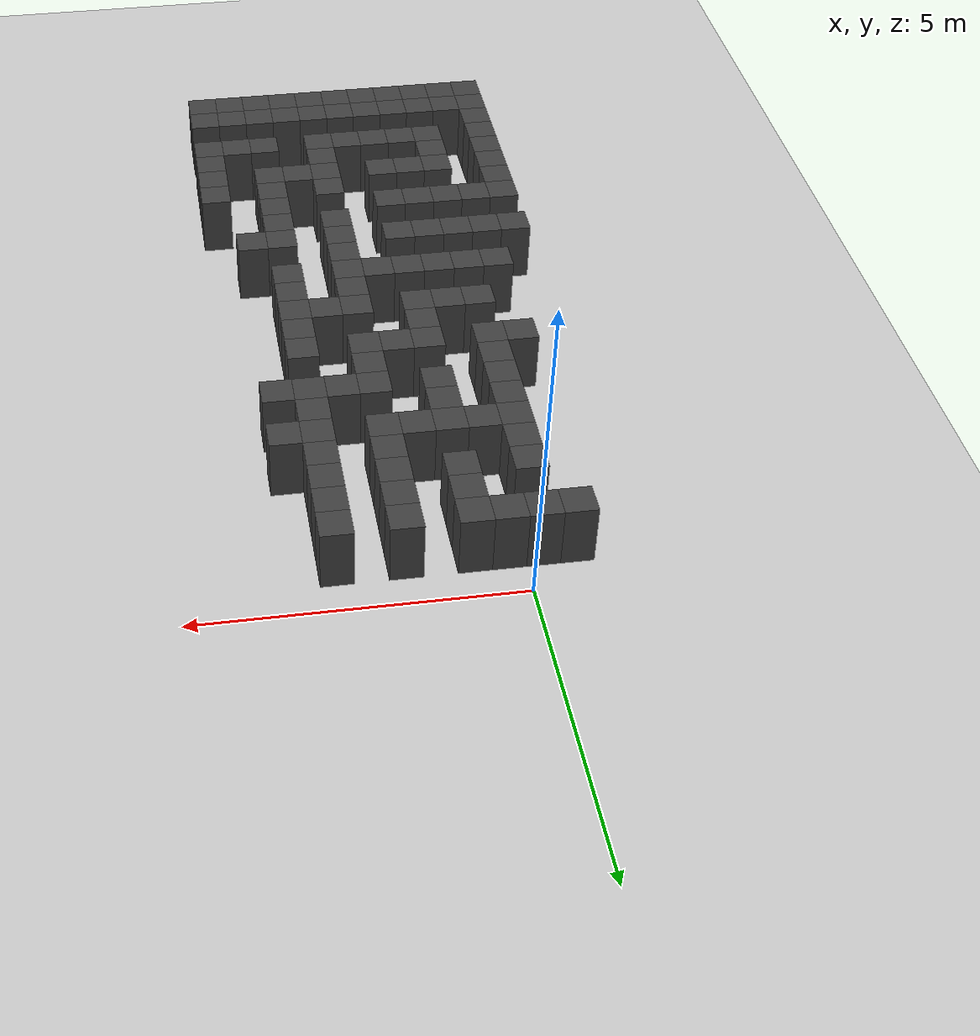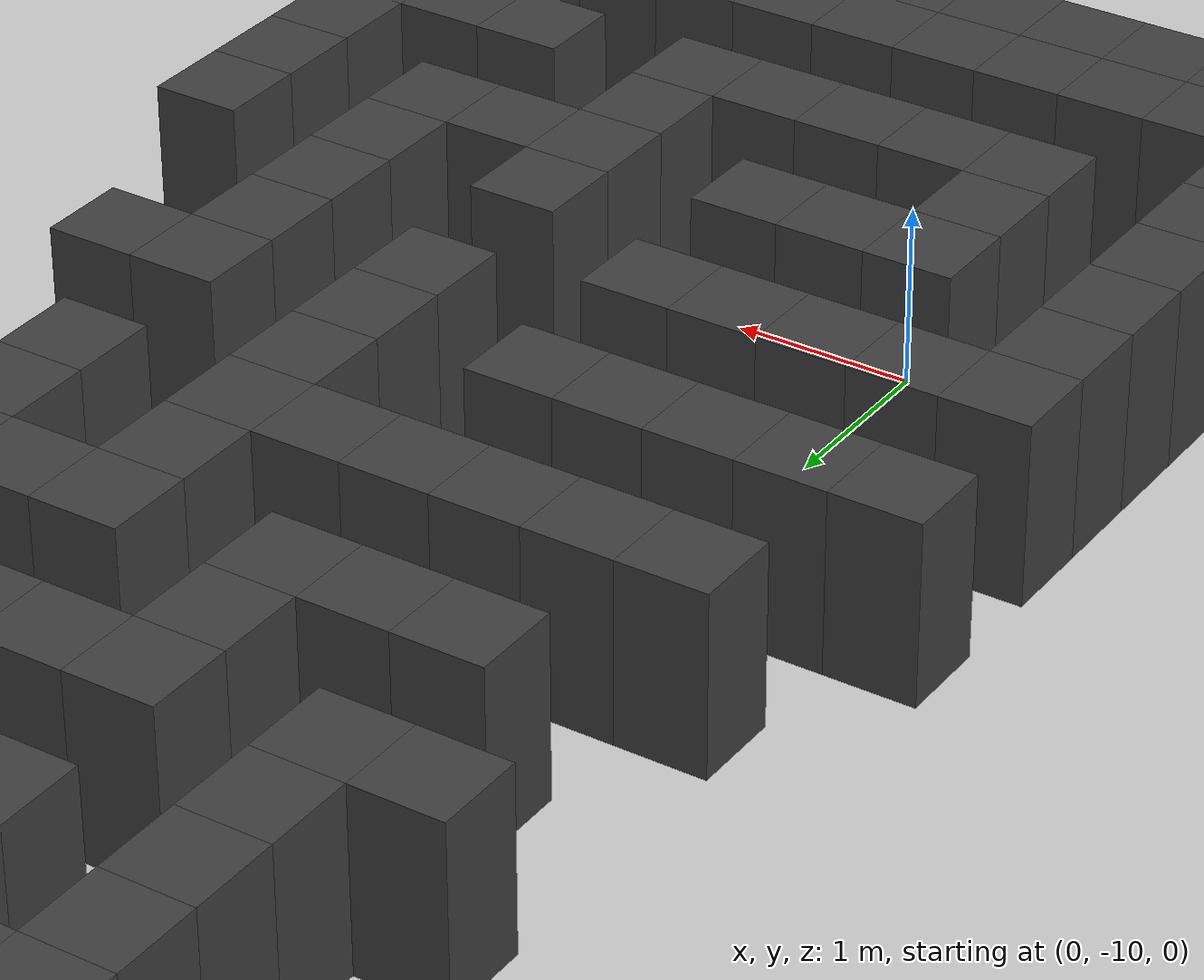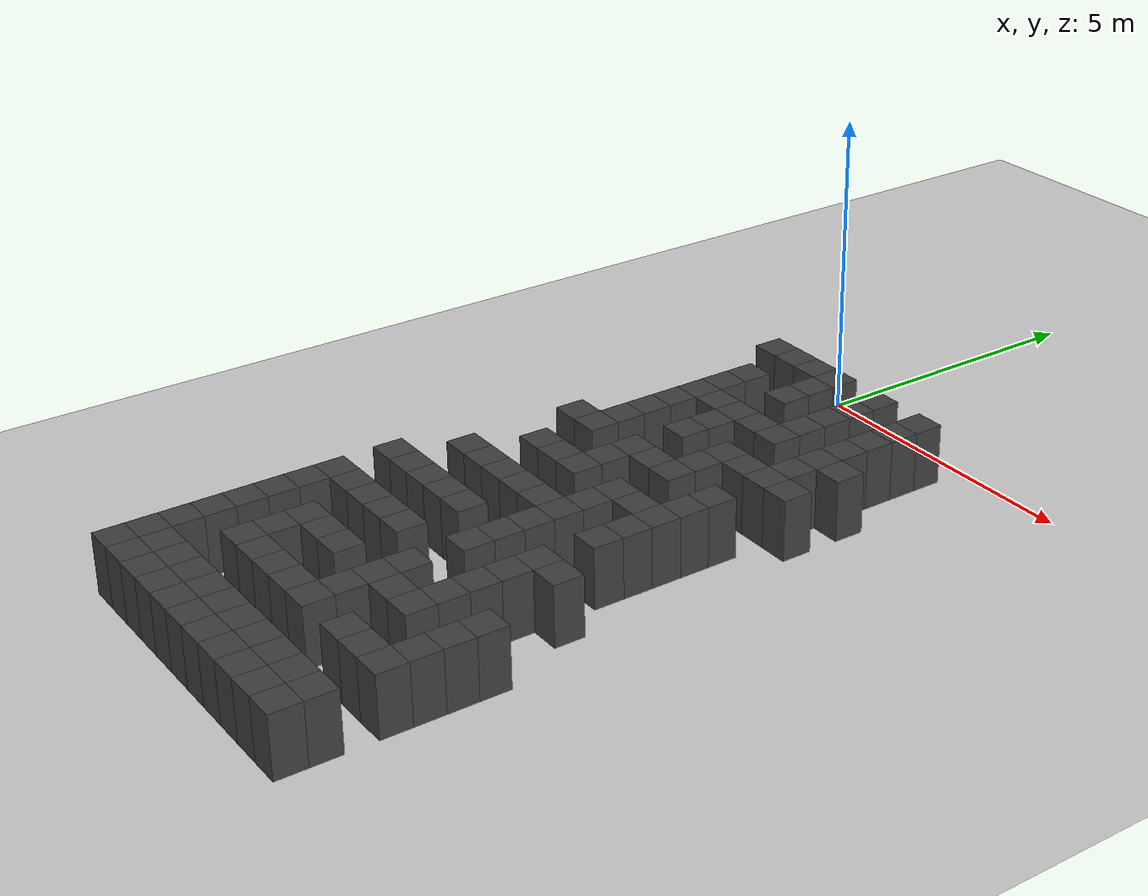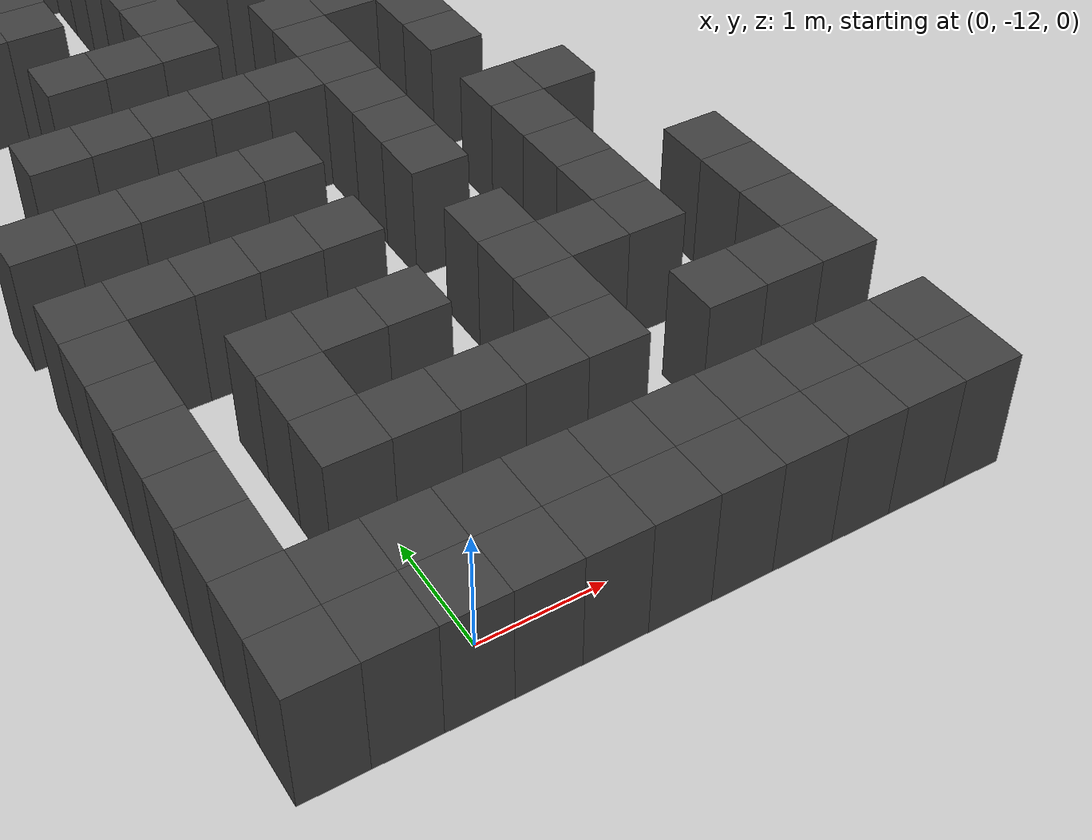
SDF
<sdf version="1.7">
 <world name="map_19815">
  <model name="ground_plane">
   <static>true</static>
   <link name="link">
    <collision name="collision">
     <geometry><plane><normal>0 0 1</normal><size>200 200</size></plane></geometry>
    </collision>
    <visual name="visual">
     <geometry><plane><normal>0 0 1</normal><size>200 200</size></plane></geometry>
     <material><ambient>0.8 0.8 0.8 1</ambient><diffuse>0.8 0.8 0.8 1</diffuse></material>
    </visual>
   </link>
  </model>
  <model name="maze_environment">
   <static>true</static>
   <link name="wall_693">
    <pose>-0.750 -0.750 0.500 0 0 0</pose>
    <collision name="col"><geometry><box><size>0.5 0.5 1.0</size></box></geometry></collision>
    <visual name="vis">
     <geometry><box><size>0.5 0.5 1.0</size></box></geometry>
     <material><ambient>0.15 0.15 0.15 1</ambient><diffuse>0.25 0.25 0.25 1</diffuse></material>
    </visual>
   </link>
   <link name="wall_694">
    <pose>-0.250 -0.750 0.500 0 0 0</pose>
    <collision name="col"><geometry><box><size>0.5 0.5 1.0</size></box></geometry></collision>
    <visual name="vis">
     <geometry><box><size>0.5 0.5 1.0</size></box></geometry>
     <material><ambient>0.15 0.15 0.15 1</ambient><diffuse>0.25 0.25 0.25 1</diffuse></material>
    </visual>
   </link>
   <link name="wall_695">
    <pose>0.250 -0.750 0.500 0 0 0</pose>
    <collision name="col"><geometry><box><size>0.5 0.5 1.0</size></box></geometry></collision>
    <visual name="vis">
     <geometry><box><size>0.5 0.5 1.0</size></box></geometry>
     <material><ambient>0.15 0.15 0.15 1</ambient><diffuse>0.25 0.25 0.25 1</diffuse></material>
    </visual>
   </link>
   <link name="wall_696">
    <pose>0.750 -0.750 0.500 0 0 0</pose>
    <collision name="col"><geometry><box><size>0.5 0.5 1.0</size></box></geometry></collision>
    <visual name="vis">
     <geometry><box><size>0.5 0.5 1.0</size></box></geometry>
     <material><ambient>0.15 0.15 0.15 1</ambient><diffuse>0.25 0.25 0.25 1</diffuse></material>
    </visual>
   </link>
   <link name="wall_697">
    <pose>1.750 -0.750 0.500 0 0 0</pose>
    <collision name="col"><geometry><box><size>0.5 0.5 1.0</size></box></geometry></collision>
    <visual name="vis">
     <geometry><box><size>0.5 0.5 1.0</size></box></geometry>
     <material><ambient>0.15 0.15 0.15 1</ambient><diffuse>0.25 0.25 0.25 1</diffuse></material>
    </visual>
   </link>
   <link name="wall_698">
    <pose>2.750 -0.750 0.500 0 0 0</pose>
    <collision name="col"><geometry><box><size>0.5 0.5 1.0</size></box></geometry></collision>
    <visual name="vis">
     <geometry><box><size>0.5 0.5 1.0</size></box></geometry>
     <material><ambient>0.15 0.15 0.15 1</ambient><diffuse>0.25 0.25 0.25 1</diffuse></material>
    </visual>
   </link>
   <link name="wall_720">
    <pose>0.750 -1.250 0.500 0 0 0</pose>
    <collision name="col"><geometry><box><size>0.5 0.5 1.0</size></box></geometry></collision>
    <visual name="vis">
     <geometry><box><size>0.5 0.5 1.0</size></box></geometry>
     <material><ambient>0.15 0.15 0.15 1</ambient><diffuse>0.25 0.25 0.25 1</diffuse></material>
    </visual>
   </link>
   <link name="wall_721">
    <pose>1.750 -1.250 0.500 0 0 0</pose>
    <collision name="col"><geometry><box><size>0.5 0.5 1.0</size></box></geometry></collision>
    <visual name="vis">
     <geometry><box><size>0.5 0.5 1.0</size></box></geometry>
     <material><ambient>0.15 0.15 0.15 1</ambient><diffuse>0.25 0.25 0.25 1</diffuse></material>
    </visual>
   </link>
   <link name="wall_722">
    <pose>2.750 -1.250 0.500 0 0 0</pose>
    <collision name="col"><geometry><box><size>0.5 0.5 1.0</size></box></geometry></collision>
    <visual name="vis">
     <geometry><box><size>0.5 0.5 1.0</size></box></geometry>
     <material><ambient>0.15 0.15 0.15 1</ambient><diffuse>0.25 0.25 0.25 1</diffuse></material>
    </visual>
   </link>
   <link name="wall_749">
    <pose>-0.250 -1.750 0.500 0 0 0</pose>
    <collision name="col"><geometry><box><size>0.5 0.5 1.0</size></box></geometry></collision>
    <visual name="vis">
     <geometry><box><size>0.5 0.5 1.0</size></box></geometry>
     <material><ambient>0.15 0.15 0.15 1</ambient><diffuse>0.25 0.25 0.25 1</diffuse></material>
    </visual>
   </link>
   <link name="wall_750">
    <pose>0.750 -1.750 0.500 0 0 0</pose>
    <collision name="col"><geometry><box><size>0.5 0.5 1.0</size></box></geometry></collision>
    <visual name="vis">
     <geometry><box><size>0.5 0.5 1.0</size></box></geometry>
     <material><ambient>0.15 0.15 0.15 1</ambient><diffuse>0.25 0.25 0.25 1</diffuse></material>
    </visual>
   </link>
   <link name="wall_751">
    <pose>1.750 -1.750 0.500 0 0 0</pose>
    <collision name="col"><geometry><box><size>0.5 0.5 1.0</size></box></geometry></collision>
    <visual name="vis">
     <geometry><box><size>0.5 0.5 1.0</size></box></geometry>
     <material><ambient>0.15 0.15 0.15 1</ambient><diffuse>0.25 0.25 0.25 1</diffuse></material>
    </visual>
   </link>
   <link name="wall_752">
    <pose>2.750 -1.750 0.500 0 0 0</pose>
    <collision name="col"><geometry><box><size>0.5 0.5 1.0</size></box></geometry></collision>
    <visual name="vis">
     <geometry><box><size>0.5 0.5 1.0</size></box></geometry>
     <material><ambient>0.15 0.15 0.15 1</ambient><diffuse>0.25 0.25 0.25 1</diffuse></material>
    </visual>
   </link>
   <link name="wall_773">
    <pose>-0.250 -2.250 0.500 0 0 0</pose>
    <collision name="col"><geometry><box><size>0.5 0.5 1.0</size></box></geometry></collision>
    <visual name="vis">
     <geometry><box><size>0.5 0.5 1.0</size></box></geometry>
     <material><ambient>0.15 0.15 0.15 1</ambient><diffuse>0.25 0.25 0.25 1</diffuse></material>
    </visual>
   </link>
   <link name="wall_774">
    <pose>1.750 -2.250 0.500 0 0 0</pose>
    <collision name="col"><geometry><box><size>0.5 0.5 1.0</size></box></geometry></collision>
    <visual name="vis">
     <geometry><box><size>0.5 0.5 1.0</size></box></geometry>
     <material><ambient>0.15 0.15 0.15 1</ambient><diffuse>0.25 0.25 0.25 1</diffuse></material>
    </visual>
   </link>
   <link name="wall_775">
    <pose>2.750 -2.250 0.500 0 0 0</pose>
    <collision name="col"><geometry><box><size>0.5 0.5 1.0</size></box></geometry></collision>
    <visual name="vis">
     <geometry><box><size>0.5 0.5 1.0</size></box></geometry>
     <material><ambient>0.15 0.15 0.15 1</ambient><diffuse>0.25 0.25 0.25 1</diffuse></material>
    </visual>
   </link>
   <link name="wall_796">
    <pose>-0.250 -2.750 0.500 0 0 0</pose>
    <collision name="col"><geometry><box><size>0.5 0.5 1.0</size></box></geometry></collision>
    <visual name="vis">
     <geometry><box><size>0.5 0.5 1.0</size></box></geometry>
     <material><ambient>0.15 0.15 0.15 1</ambient><diffuse>0.25 0.25 0.25 1</diffuse></material>
    </visual>
   </link>
   <link name="wall_797">
    <pose>0.250 -2.750 0.500 0 0 0</pose>
    <collision name="col"><geometry><box><size>0.5 0.5 1.0</size></box></geometry></collision>
    <visual name="vis">
     <geometry><box><size>0.5 0.5 1.0</size></box></geometry>
     <material><ambient>0.15 0.15 0.15 1</ambient><diffuse>0.25 0.25 0.25 1</diffuse></material>
    </visual>
   </link>
   <link name="wall_798">
    <pose>0.750 -2.750 0.500 0 0 0</pose>
    <collision name="col"><geometry><box><size>0.5 0.5 1.0</size></box></geometry></collision>
    <visual name="vis">
     <geometry><box><size>0.5 0.5 1.0</size></box></geometry>
     <material><ambient>0.15 0.15 0.15 1</ambient><diffuse>0.25 0.25 0.25 1</diffuse></material>
    </visual>
   </link>
   <link name="wall_799">
    <pose>1.250 -2.750 0.500 0 0 0</pose>
    <collision name="col"><geometry><box><size>0.5 0.5 1.0</size></box></geometry></collision>
    <visual name="vis">
     <geometry><box><size>0.5 0.5 1.0</size></box></geometry>
     <material><ambient>0.15 0.15 0.15 1</ambient><diffuse>0.25 0.25 0.25 1</diffuse></material>
    </visual>
   </link>
   <link name="wall_800">
    <pose>1.750 -2.750 0.500 0 0 0</pose>
    <collision name="col"><geometry><box><size>0.5 0.5 1.0</size></box></geometry></collision>
    <visual name="vis">
     <geometry><box><size>0.5 0.5 1.0</size></box></geometry>
     <material><ambient>0.15 0.15 0.15 1</ambient><diffuse>0.25 0.25 0.25 1</diffuse></material>
    </visual>
   </link>
   <link name="wall_801">
    <pose>2.750 -2.750 0.500 0 0 0</pose>
    <collision name="col"><geometry><box><size>0.5 0.5 1.0</size></box></geometry></collision>
    <visual name="vis">
     <geometry><box><size>0.5 0.5 1.0</size></box></geometry>
     <material><ambient>0.15 0.15 0.15 1</ambient><diffuse>0.25 0.25 0.25 1</diffuse></material>
    </visual>
   </link>
   <link name="wall_802">
    <pose>3.250 -2.750 0.500 0 0 0</pose>
    <collision name="col"><geometry><box><size>0.5 0.5 1.0</size></box></geometry></collision>
    <visual name="vis">
     <geometry><box><size>0.5 0.5 1.0</size></box></geometry>
     <material><ambient>0.15 0.15 0.15 1</ambient><diffuse>0.25 0.25 0.25 1</diffuse></material>
    </visual>
   </link>
   <link name="wall_827">
    <pose>-0.250 -3.250 0.500 0 0 0</pose>
    <collision name="col"><geometry><box><size>0.5 0.5 1.0</size></box></geometry></collision>
    <visual name="vis">
     <geometry><box><size>0.5 0.5 1.0</size></box></geometry>
     <material><ambient>0.15 0.15 0.15 1</ambient><diffuse>0.25 0.25 0.25 1</diffuse></material>
    </visual>
   </link>
   <link name="wall_828">
    <pose>0.750 -3.250 0.500 0 0 0</pose>
    <collision name="col"><geometry><box><size>0.5 0.5 1.0</size></box></geometry></collision>
    <visual name="vis">
     <geometry><box><size>0.5 0.5 1.0</size></box></geometry>
     <material><ambient>0.15 0.15 0.15 1</ambient><diffuse>0.25 0.25 0.25 1</diffuse></material>
    </visual>
   </link>
   <link name="wall_829">
    <pose>2.750 -3.250 0.500 0 0 0</pose>
    <collision name="col"><geometry><box><size>0.5 0.5 1.0</size></box></geometry></collision>
    <visual name="vis">
     <geometry><box><size>0.5 0.5 1.0</size></box></geometry>
     <material><ambient>0.15 0.15 0.15 1</ambient><diffuse>0.25 0.25 0.25 1</diffuse></material>
    </visual>
   </link>
   <link name="wall_852">
    <pose>-0.250 -3.750 0.500 0 0 0</pose>
    <collision name="col"><geometry><box><size>0.5 0.5 1.0</size></box></geometry></collision>
    <visual name="vis">
     <geometry><box><size>0.5 0.5 1.0</size></box></geometry>
     <material><ambient>0.15 0.15 0.15 1</ambient><diffuse>0.25 0.25 0.25 1</diffuse></material>
    </visual>
   </link>
   <link name="wall_853">
    <pose>0.750 -3.750 0.500 0 0 0</pose>
    <collision name="col"><geometry><box><size>0.5 0.5 1.0</size></box></geometry></collision>
    <visual name="vis">
     <geometry><box><size>0.5 0.5 1.0</size></box></geometry>
     <material><ambient>0.15 0.15 0.15 1</ambient><diffuse>0.25 0.25 0.25 1</diffuse></material>
    </visual>
   </link>
   <link name="wall_854">
    <pose>1.750 -3.750 0.500 0 0 0</pose>
    <collision name="col"><geometry><box><size>0.5 0.5 1.0</size></box></geometry></collision>
    <visual name="vis">
     <geometry><box><size>0.5 0.5 1.0</size></box></geometry>
     <material><ambient>0.15 0.15 0.15 1</ambient><diffuse>0.25 0.25 0.25 1</diffuse></material>
    </visual>
   </link>
   <link name="wall_855">
    <pose>2.250 -3.750 0.500 0 0 0</pose>
    <collision name="col"><geometry><box><size>0.5 0.5 1.0</size></box></geometry></collision>
    <visual name="vis">
     <geometry><box><size>0.5 0.5 1.0</size></box></geometry>
     <material><ambient>0.15 0.15 0.15 1</ambient><diffuse>0.25 0.25 0.25 1</diffuse></material>
    </visual>
   </link>
   <link name="wall_856">
    <pose>2.750 -3.750 0.500 0 0 0</pose>
    <collision name="col"><geometry><box><size>0.5 0.5 1.0</size></box></geometry></collision>
    <visual name="vis">
     <geometry><box><size>0.5 0.5 1.0</size></box></geometry>
     <material><ambient>0.15 0.15 0.15 1</ambient><diffuse>0.25 0.25 0.25 1</diffuse></material>
    </visual>
   </link>
   <link name="wall_857">
    <pose>3.250 -3.750 0.500 0 0 0</pose>
    <collision name="col"><geometry><box><size>0.5 0.5 1.0</size></box></geometry></collision>
    <visual name="vis">
     <geometry><box><size>0.5 0.5 1.0</size></box></geometry>
     <material><ambient>0.15 0.15 0.15 1</ambient><diffuse>0.25 0.25 0.25 1</diffuse></material>
    </visual>
   </link>
   <link name="wall_878">
    <pose>-0.250 -4.250 0.500 0 0 0</pose>
    <collision name="col"><geometry><box><size>0.5 0.5 1.0</size></box></geometry></collision>
    <visual name="vis">
     <geometry><box><size>0.5 0.5 1.0</size></box></geometry>
     <material><ambient>0.15 0.15 0.15 1</ambient><diffuse>0.25 0.25 0.25 1</diffuse></material>
    </visual>
   </link>
   <link name="wall_879">
    <pose>1.750 -4.250 0.500 0 0 0</pose>
    <collision name="col"><geometry><box><size>0.5 0.5 1.0</size></box></geometry></collision>
    <visual name="vis">
     <geometry><box><size>0.5 0.5 1.0</size></box></geometry>
     <material><ambient>0.15 0.15 0.15 1</ambient><diffuse>0.25 0.25 0.25 1</diffuse></material>
    </visual>
   </link>
   <link name="wall_903">
    <pose>-0.750 -4.750 0.500 0 0 0</pose>
    <collision name="col"><geometry><box><size>0.5 0.5 1.0</size></box></geometry></collision>
    <visual name="vis">
     <geometry><box><size>0.5 0.5 1.0</size></box></geometry>
     <material><ambient>0.15 0.15 0.15 1</ambient><diffuse>0.25 0.25 0.25 1</diffuse></material>
    </visual>
   </link>
   <link name="wall_904">
    <pose>-0.250 -4.750 0.500 0 0 0</pose>
    <collision name="col"><geometry><box><size>0.5 0.5 1.0</size></box></geometry></collision>
    <visual name="vis">
     <geometry><box><size>0.5 0.5 1.0</size></box></geometry>
     <material><ambient>0.15 0.15 0.15 1</ambient><diffuse>0.25 0.25 0.25 1</diffuse></material>
    </visual>
   </link>
   <link name="wall_905">
    <pose>0.750 -4.750 0.500 0 0 0</pose>
    <collision name="col"><geometry><box><size>0.5 0.5 1.0</size></box></geometry></collision>
    <visual name="vis">
     <geometry><box><size>0.5 0.5 1.0</size></box></geometry>
     <material><ambient>0.15 0.15 0.15 1</ambient><diffuse>0.25 0.25 0.25 1</diffuse></material>
    </visual>
   </link>
   <link name="wall_906">
    <pose>1.250 -4.750 0.500 0 0 0</pose>
    <collision name="col"><geometry><box><size>0.5 0.5 1.0</size></box></geometry></collision>
    <visual name="vis">
     <geometry><box><size>0.5 0.5 1.0</size></box></geometry>
     <material><ambient>0.15 0.15 0.15 1</ambient><diffuse>0.25 0.25 0.25 1</diffuse></material>
    </visual>
   </link>
   <link name="wall_907">
    <pose>1.750 -4.750 0.500 0 0 0</pose>
    <collision name="col"><geometry><box><size>0.5 0.5 1.0</size></box></geometry></collision>
    <visual name="vis">
     <geometry><box><size>0.5 0.5 1.0</size></box></geometry>
     <material><ambient>0.15 0.15 0.15 1</ambient><diffuse>0.25 0.25 0.25 1</diffuse></material>
    </visual>
   </link>
   <link name="wall_908">
    <pose>2.750 -4.750 0.500 0 0 0</pose>
    <collision name="col"><geometry><box><size>0.5 0.5 1.0</size></box></geometry></collision>
    <visual name="vis">
     <geometry><box><size>0.5 0.5 1.0</size></box></geometry>
     <material><ambient>0.15 0.15 0.15 1</ambient><diffuse>0.25 0.25 0.25 1</diffuse></material>
    </visual>
   </link>
   <link name="wall_929">
    <pose>0.750 -5.250 0.500 0 0 0</pose>
    <collision name="col"><geometry><box><size>0.5 0.5 1.0</size></box></geometry></collision>
    <visual name="vis">
     <geometry><box><size>0.5 0.5 1.0</size></box></geometry>
     <material><ambient>0.15 0.15 0.15 1</ambient><diffuse>0.25 0.25 0.25 1</diffuse></material>
    </visual>
   </link>
   <link name="wall_930">
    <pose>2.750 -5.250 0.500 0 0 0</pose>
    <collision name="col"><geometry><box><size>0.5 0.5 1.0</size></box></geometry></collision>
    <visual name="vis">
     <geometry><box><size>0.5 0.5 1.0</size></box></geometry>
     <material><ambient>0.15 0.15 0.15 1</ambient><diffuse>0.25 0.25 0.25 1</diffuse></material>
    </visual>
   </link>
   <link name="wall_954">
    <pose>-0.250 -5.750 0.500 0 0 0</pose>
    <collision name="col"><geometry><box><size>0.5 0.5 1.0</size></box></geometry></collision>
    <visual name="vis">
     <geometry><box><size>0.5 0.5 1.0</size></box></geometry>
     <material><ambient>0.15 0.15 0.15 1</ambient><diffuse>0.25 0.25 0.25 1</diffuse></material>
    </visual>
   </link>
   <link name="wall_955">
    <pose>0.250 -5.750 0.500 0 0 0</pose>
    <collision name="col"><geometry><box><size>0.5 0.5 1.0</size></box></geometry></collision>
    <visual name="vis">
     <geometry><box><size>0.5 0.5 1.0</size></box></geometry>
     <material><ambient>0.15 0.15 0.15 1</ambient><diffuse>0.25 0.25 0.25 1</diffuse></material>
    </visual>
   </link>
   <link name="wall_956">
    <pose>0.750 -5.750 0.500 0 0 0</pose>
    <collision name="col"><geometry><box><size>0.5 0.5 1.0</size></box></geometry></collision>
    <visual name="vis">
     <geometry><box><size>0.5 0.5 1.0</size></box></geometry>
     <material><ambient>0.15 0.15 0.15 1</ambient><diffuse>0.25 0.25 0.25 1</diffuse></material>
    </visual>
   </link>
   <link name="wall_957">
    <pose>1.750 -5.750 0.500 0 0 0</pose>
    <collision name="col"><geometry><box><size>0.5 0.5 1.0</size></box></geometry></collision>
    <visual name="vis">
     <geometry><box><size>0.5 0.5 1.0</size></box></geometry>
     <material><ambient>0.15 0.15 0.15 1</ambient><diffuse>0.25 0.25 0.25 1</diffuse></material>
    </visual>
   </link>
   <link name="wall_958">
    <pose>2.250 -5.750 0.500 0 0 0</pose>
    <collision name="col"><geometry><box><size>0.5 0.5 1.0</size></box></geometry></collision>
    <visual name="vis">
     <geometry><box><size>0.5 0.5 1.0</size></box></geometry>
     <material><ambient>0.15 0.15 0.15 1</ambient><diffuse>0.25 0.25 0.25 1</diffuse></material>
    </visual>
   </link>
   <link name="wall_959">
    <pose>2.750 -5.750 0.500 0 0 0</pose>
    <collision name="col"><geometry><box><size>0.5 0.5 1.0</size></box></geometry></collision>
    <visual name="vis">
     <geometry><box><size>0.5 0.5 1.0</size></box></geometry>
     <material><ambient>0.15 0.15 0.15 1</ambient><diffuse>0.25 0.25 0.25 1</diffuse></material>
    </visual>
   </link>
   <link name="wall_980">
    <pose>1.750 -6.250 0.500 0 0 0</pose>
    <collision name="col"><geometry><box><size>0.5 0.5 1.0</size></box></geometry></collision>
    <visual name="vis">
     <geometry><box><size>0.5 0.5 1.0</size></box></geometry>
     <material><ambient>0.15 0.15 0.15 1</ambient><diffuse>0.25 0.25 0.25 1</diffuse></material>
    </visual>
   </link>
   <link name="wall_981">
    <pose>2.750 -6.250 0.500 0 0 0</pose>
    <collision name="col"><geometry><box><size>0.5 0.5 1.0</size></box></geometry></collision>
    <visual name="vis">
     <geometry><box><size>0.5 0.5 1.0</size></box></geometry>
     <material><ambient>0.15 0.15 0.15 1</ambient><diffuse>0.25 0.25 0.25 1</diffuse></material>
    </visual>
   </link>
   <link name="wall_1006">
    <pose>-0.750 -6.750 0.500 0 0 0</pose>
    <collision name="col"><geometry><box><size>0.5 0.5 1.0</size></box></geometry></collision>
    <visual name="vis">
     <geometry><box><size>0.5 0.5 1.0</size></box></geometry>
     <material><ambient>0.15 0.15 0.15 1</ambient><diffuse>0.25 0.25 0.25 1</diffuse></material>
    </visual>
   </link>
   <link name="wall_1007">
    <pose>-0.250 -6.750 0.500 0 0 0</pose>
    <collision name="col"><geometry><box><size>0.5 0.5 1.0</size></box></geometry></collision>
    <visual name="vis">
     <geometry><box><size>0.5 0.5 1.0</size></box></geometry>
     <material><ambient>0.15 0.15 0.15 1</ambient><diffuse>0.25 0.25 0.25 1</diffuse></material>
    </visual>
   </link>
   <link name="wall_1008">
    <pose>0.250 -6.750 0.500 0 0 0</pose>
    <collision name="col"><geometry><box><size>0.5 0.5 1.0</size></box></geometry></collision>
    <visual name="vis">
     <geometry><box><size>0.5 0.5 1.0</size></box></geometry>
     <material><ambient>0.15 0.15 0.15 1</ambient><diffuse>0.25 0.25 0.25 1</diffuse></material>
    </visual>
   </link>
   <link name="wall_1009">
    <pose>0.750 -6.750 0.500 0 0 0</pose>
    <collision name="col"><geometry><box><size>0.5 0.5 1.0</size></box></geometry></collision>
    <visual name="vis">
     <geometry><box><size>0.5 0.5 1.0</size></box></geometry>
     <material><ambient>0.15 0.15 0.15 1</ambient><diffuse>0.25 0.25 0.25 1</diffuse></material>
    </visual>
   </link>
   <link name="wall_1010">
    <pose>1.250 -6.750 0.500 0 0 0</pose>
    <collision name="col"><geometry><box><size>0.5 0.5 1.0</size></box></geometry></collision>
    <visual name="vis">
     <geometry><box><size>0.5 0.5 1.0</size></box></geometry>
     <material><ambient>0.15 0.15 0.15 1</ambient><diffuse>0.25 0.25 0.25 1</diffuse></material>
    </visual>
   </link>
   <link name="wall_1011">
    <pose>1.750 -6.750 0.500 0 0 0</pose>
    <collision name="col"><geometry><box><size>0.5 0.5 1.0</size></box></geometry></collision>
    <visual name="vis">
     <geometry><box><size>0.5 0.5 1.0</size></box></geometry>
     <material><ambient>0.15 0.15 0.15 1</ambient><diffuse>0.25 0.25 0.25 1</diffuse></material>
    </visual>
   </link>
   <link name="wall_1012">
    <pose>2.750 -6.750 0.500 0 0 0</pose>
    <collision name="col"><geometry><box><size>0.5 0.5 1.0</size></box></geometry></collision>
    <visual name="vis">
     <geometry><box><size>0.5 0.5 1.0</size></box></geometry>
     <material><ambient>0.15 0.15 0.15 1</ambient><diffuse>0.25 0.25 0.25 1</diffuse></material>
    </visual>
   </link>
   <link name="wall_1030">
    <pose>1.750 -7.250 0.500 0 0 0</pose>
    <collision name="col"><geometry><box><size>0.5 0.5 1.0</size></box></geometry></collision>
    <visual name="vis">
     <geometry><box><size>0.5 0.5 1.0</size></box></geometry>
     <material><ambient>0.15 0.15 0.15 1</ambient><diffuse>0.25 0.25 0.25 1</diffuse></material>
    </visual>
   </link>
   <link name="wall_1055">
    <pose>-1.250 -7.750 0.500 0 0 0</pose>
    <collision name="col"><geometry><box><size>0.5 0.5 1.0</size></box></geometry></collision>
    <visual name="vis">
     <geometry><box><size>0.5 0.5 1.0</size></box></geometry>
     <material><ambient>0.15 0.15 0.15 1</ambient><diffuse>0.25 0.25 0.25 1</diffuse></material>
    </visual>
   </link>
   <link name="wall_1056">
    <pose>-0.750 -7.750 0.500 0 0 0</pose>
    <collision name="col"><geometry><box><size>0.5 0.5 1.0</size></box></geometry></collision>
    <visual name="vis">
     <geometry><box><size>0.5 0.5 1.0</size></box></geometry>
     <material><ambient>0.15 0.15 0.15 1</ambient><diffuse>0.25 0.25 0.25 1</diffuse></material>
    </visual>
   </link>
   <link name="wall_1057">
    <pose>-0.250 -7.750 0.500 0 0 0</pose>
    <collision name="col"><geometry><box><size>0.5 0.5 1.0</size></box></geometry></collision>
    <visual name="vis">
     <geometry><box><size>0.5 0.5 1.0</size></box></geometry>
     <material><ambient>0.15 0.15 0.15 1</ambient><diffuse>0.25 0.25 0.25 1</diffuse></material>
    </visual>
   </link>
   <link name="wall_1058">
    <pose>0.250 -7.750 0.500 0 0 0</pose>
    <collision name="col"><geometry><box><size>0.5 0.5 1.0</size></box></geometry></collision>
    <visual name="vis">
     <geometry><box><size>0.5 0.5 1.0</size></box></geometry>
     <material><ambient>0.15 0.15 0.15 1</ambient><diffuse>0.25 0.25 0.25 1</diffuse></material>
    </visual>
   </link>
   <link name="wall_1059">
    <pose>0.750 -7.750 0.500 0 0 0</pose>
    <collision name="col"><geometry><box><size>0.5 0.5 1.0</size></box></geometry></collision>
    <visual name="vis">
     <geometry><box><size>0.5 0.5 1.0</size></box></geometry>
     <material><ambient>0.15 0.15 0.15 1</ambient><diffuse>0.25 0.25 0.25 1</diffuse></material>
    </visual>
   </link>
   <link name="wall_1060">
    <pose>1.750 -7.750 0.500 0 0 0</pose>
    <collision name="col"><geometry><box><size>0.5 0.5 1.0</size></box></geometry></collision>
    <visual name="vis">
     <geometry><box><size>0.5 0.5 1.0</size></box></geometry>
     <material><ambient>0.15 0.15 0.15 1</ambient><diffuse>0.25 0.25 0.25 1</diffuse></material>
    </visual>
   </link>
   <link name="wall_1061">
    <pose>2.750 -7.750 0.500 0 0 0</pose>
    <collision name="col"><geometry><box><size>0.5 0.5 1.0</size></box></geometry></collision>
    <visual name="vis">
     <geometry><box><size>0.5 0.5 1.0</size></box></geometry>
     <material><ambient>0.15 0.15 0.15 1</ambient><diffuse>0.25 0.25 0.25 1</diffuse></material>
    </visual>
   </link>
   <link name="wall_1062">
    <pose>3.250 -7.750 0.500 0 0 0</pose>
    <collision name="col"><geometry><box><size>0.5 0.5 1.0</size></box></geometry></collision>
    <visual name="vis">
     <geometry><box><size>0.5 0.5 1.0</size></box></geometry>
     <material><ambient>0.15 0.15 0.15 1</ambient><diffuse>0.25 0.25 0.25 1</diffuse></material>
    </visual>
   </link>
   <link name="wall_1083">
    <pose>1.750 -8.250 0.500 0 0 0</pose>
    <collision name="col"><geometry><box><size>0.5 0.5 1.0</size></box></geometry></collision>
    <visual name="vis">
     <geometry><box><size>0.5 0.5 1.0</size></box></geometry>
     <material><ambient>0.15 0.15 0.15 1</ambient><diffuse>0.25 0.25 0.25 1</diffuse></material>
    </visual>
   </link>
   <link name="wall_1084">
    <pose>2.750 -8.250 0.500 0 0 0</pose>
    <collision name="col"><geometry><box><size>0.5 0.5 1.0</size></box></geometry></collision>
    <visual name="vis">
     <geometry><box><size>0.5 0.5 1.0</size></box></geometry>
     <material><ambient>0.15 0.15 0.15 1</ambient><diffuse>0.25 0.25 0.25 1</diffuse></material>
    </visual>
   </link>
   <link name="wall_1107">
    <pose>-1.250 -8.750 0.500 0 0 0</pose>
    <collision name="col"><geometry><box><size>0.5 0.5 1.0</size></box></geometry></collision>
    <visual name="vis">
     <geometry><box><size>0.5 0.5 1.0</size></box></geometry>
     <material><ambient>0.15 0.15 0.15 1</ambient><diffuse>0.25 0.25 0.25 1</diffuse></material>
    </visual>
   </link>
   <link name="wall_1108">
    <pose>-0.750 -8.750 0.500 0 0 0</pose>
    <collision name="col"><geometry><box><size>0.5 0.5 1.0</size></box></geometry></collision>
    <visual name="vis">
     <geometry><box><size>0.5 0.5 1.0</size></box></geometry>
     <material><ambient>0.15 0.15 0.15 1</ambient><diffuse>0.25 0.25 0.25 1</diffuse></material>
    </visual>
   </link>
   <link name="wall_1109">
    <pose>-0.250 -8.750 0.500 0 0 0</pose>
    <collision name="col"><geometry><box><size>0.5 0.5 1.0</size></box></geometry></collision>
    <visual name="vis">
     <geometry><box><size>0.5 0.5 1.0</size></box></geometry>
     <material><ambient>0.15 0.15 0.15 1</ambient><diffuse>0.25 0.25 0.25 1</diffuse></material>
    </visual>
   </link>
   <link name="wall_1110">
    <pose>0.250 -8.750 0.500 0 0 0</pose>
    <collision name="col"><geometry><box><size>0.5 0.5 1.0</size></box></geometry></collision>
    <visual name="vis">
     <geometry><box><size>0.5 0.5 1.0</size></box></geometry>
     <material><ambient>0.15 0.15 0.15 1</ambient><diffuse>0.25 0.25 0.25 1</diffuse></material>
    </visual>
   </link>
   <link name="wall_1111">
    <pose>0.750 -8.750 0.500 0 0 0</pose>
    <collision name="col"><geometry><box><size>0.5 0.5 1.0</size></box></geometry></collision>
    <visual name="vis">
     <geometry><box><size>0.5 0.5 1.0</size></box></geometry>
     <material><ambient>0.15 0.15 0.15 1</ambient><diffuse>0.25 0.25 0.25 1</diffuse></material>
    </visual>
   </link>
   <link name="wall_1112">
    <pose>2.750 -8.750 0.500 0 0 0</pose>
    <collision name="col"><geometry><box><size>0.5 0.5 1.0</size></box></geometry></collision>
    <visual name="vis">
     <geometry><box><size>0.5 0.5 1.0</size></box></geometry>
     <material><ambient>0.15 0.15 0.15 1</ambient><diffuse>0.25 0.25 0.25 1</diffuse></material>
    </visual>
   </link>
   <link name="wall_1132">
    <pose>-1.250 -9.250 0.500 0 0 0</pose>
    <collision name="col"><geometry><box><size>0.5 0.5 1.0</size></box></geometry></collision>
    <visual name="vis">
     <geometry><box><size>0.5 0.5 1.0</size></box></geometry>
     <material><ambient>0.15 0.15 0.15 1</ambient><diffuse>0.25 0.25 0.25 1</diffuse></material>
    </visual>
   </link>
   <link name="wall_1133">
    <pose>1.750 -9.250 0.500 0 0 0</pose>
    <collision name="col"><geometry><box><size>0.5 0.5 1.0</size></box></geometry></collision>
    <visual name="vis">
     <geometry><box><size>0.5 0.5 1.0</size></box></geometry>
     <material><ambient>0.15 0.15 0.15 1</ambient><diffuse>0.25 0.25 0.25 1</diffuse></material>
    </visual>
   </link>
   <link name="wall_1134">
    <pose>2.750 -9.250 0.500 0 0 0</pose>
    <collision name="col"><geometry><box><size>0.5 0.5 1.0</size></box></geometry></collision>
    <visual name="vis">
     <geometry><box><size>0.5 0.5 1.0</size></box></geometry>
     <material><ambient>0.15 0.15 0.15 1</ambient><diffuse>0.25 0.25 0.25 1</diffuse></material>
    </visual>
   </link>
   <link name="wall_1135">
    <pose>3.750 -9.250 0.500 0 0 0</pose>
    <collision name="col"><geometry><box><size>0.5 0.5 1.0</size></box></geometry></collision>
    <visual name="vis">
     <geometry><box><size>0.5 0.5 1.0</size></box></geometry>
     <material><ambient>0.15 0.15 0.15 1</ambient><diffuse>0.25 0.25 0.25 1</diffuse></material>
    </visual>
   </link>
   <link name="wall_1157">
    <pose>-1.250 -9.750 0.500 0 0 0</pose>
    <collision name="col"><geometry><box><size>0.5 0.5 1.0</size></box></geometry></collision>
    <visual name="vis">
     <geometry><box><size>0.5 0.5 1.0</size></box></geometry>
     <material><ambient>0.15 0.15 0.15 1</ambient><diffuse>0.25 0.25 0.25 1</diffuse></material>
    </visual>
   </link>
   <link name="wall_1158">
    <pose>-0.250 -9.750 0.500 0 0 0</pose>
    <collision name="col"><geometry><box><size>0.5 0.5 1.0</size></box></geometry></collision>
    <visual name="vis">
     <geometry><box><size>0.5 0.5 1.0</size></box></geometry>
     <material><ambient>0.15 0.15 0.15 1</ambient><diffuse>0.25 0.25 0.25 1</diffuse></material>
    </visual>
   </link>
   <link name="wall_1159">
    <pose>0.250 -9.750 0.500 0 0 0</pose>
    <collision name="col"><geometry><box><size>0.5 0.5 1.0</size></box></geometry></collision>
    <visual name="vis">
     <geometry><box><size>0.5 0.5 1.0</size></box></geometry>
     <material><ambient>0.15 0.15 0.15 1</ambient><diffuse>0.25 0.25 0.25 1</diffuse></material>
    </visual>
   </link>
   <link name="wall_1160">
    <pose>0.750 -9.750 0.500 0 0 0</pose>
    <collision name="col"><geometry><box><size>0.5 0.5 1.0</size></box></geometry></collision>
    <visual name="vis">
     <geometry><box><size>0.5 0.5 1.0</size></box></geometry>
     <material><ambient>0.15 0.15 0.15 1</ambient><diffuse>0.25 0.25 0.25 1</diffuse></material>
    </visual>
   </link>
   <link name="wall_1161">
    <pose>1.750 -9.750 0.500 0 0 0</pose>
    <collision name="col"><geometry><box><size>0.5 0.5 1.0</size></box></geometry></collision>
    <visual name="vis">
     <geometry><box><size>0.5 0.5 1.0</size></box></geometry>
     <material><ambient>0.15 0.15 0.15 1</ambient><diffuse>0.25 0.25 0.25 1</diffuse></material>
    </visual>
   </link>
   <link name="wall_1162">
    <pose>2.250 -9.750 0.500 0 0 0</pose>
    <collision name="col"><geometry><box><size>0.5 0.5 1.0</size></box></geometry></collision>
    <visual name="vis">
     <geometry><box><size>0.5 0.5 1.0</size></box></geometry>
     <material><ambient>0.15 0.15 0.15 1</ambient><diffuse>0.25 0.25 0.25 1</diffuse></material>
    </visual>
   </link>
   <link name="wall_1163">
    <pose>2.750 -9.750 0.500 0 0 0</pose>
    <collision name="col"><geometry><box><size>0.5 0.5 1.0</size></box></geometry></collision>
    <visual name="vis">
     <geometry><box><size>0.5 0.5 1.0</size></box></geometry>
     <material><ambient>0.15 0.15 0.15 1</ambient><diffuse>0.25 0.25 0.25 1</diffuse></material>
    </visual>
   </link>
   <link name="wall_1164">
    <pose>3.750 -9.750 0.500 0 0 0</pose>
    <collision name="col"><geometry><box><size>0.5 0.5 1.0</size></box></geometry></collision>
    <visual name="vis">
     <geometry><box><size>0.5 0.5 1.0</size></box></geometry>
     <material><ambient>0.15 0.15 0.15 1</ambient><diffuse>0.25 0.25 0.25 1</diffuse></material>
    </visual>
   </link>
   <link name="wall_1184">
    <pose>-1.250 -10.250 0.500 0 0 0</pose>
    <collision name="col"><geometry><box><size>0.5 0.5 1.0</size></box></geometry></collision>
    <visual name="vis">
     <geometry><box><size>0.5 0.5 1.0</size></box></geometry>
     <material><ambient>0.15 0.15 0.15 1</ambient><diffuse>0.25 0.25 0.25 1</diffuse></material>
    </visual>
   </link>
   <link name="wall_1185">
    <pose>-0.250 -10.250 0.500 0 0 0</pose>
    <collision name="col"><geometry><box><size>0.5 0.5 1.0</size></box></geometry></collision>
    <visual name="vis">
     <geometry><box><size>0.5 0.5 1.0</size></box></geometry>
     <material><ambient>0.15 0.15 0.15 1</ambient><diffuse>0.25 0.25 0.25 1</diffuse></material>
    </visual>
   </link>
   <link name="wall_1186">
    <pose>1.750 -10.250 0.500 0 0 0</pose>
    <collision name="col"><geometry><box><size>0.5 0.5 1.0</size></box></geometry></collision>
    <visual name="vis">
     <geometry><box><size>0.5 0.5 1.0</size></box></geometry>
     <material><ambient>0.15 0.15 0.15 1</ambient><diffuse>0.25 0.25 0.25 1</diffuse></material>
    </visual>
   </link>
   <link name="wall_1187">
    <pose>3.750 -10.250 0.500 0 0 0</pose>
    <collision name="col"><geometry><box><size>0.5 0.5 1.0</size></box></geometry></collision>
    <visual name="vis">
     <geometry><box><size>0.5 0.5 1.0</size></box></geometry>
     <material><ambient>0.15 0.15 0.15 1</ambient><diffuse>0.25 0.25 0.25 1</diffuse></material>
    </visual>
   </link>
   <link name="wall_1210">
    <pose>-1.250 -10.750 0.500 0 0 0</pose>
    <collision name="col"><geometry><box><size>0.5 0.5 1.0</size></box></geometry></collision>
    <visual name="vis">
     <geometry><box><size>0.5 0.5 1.0</size></box></geometry>
     <material><ambient>0.15 0.15 0.15 1</ambient><diffuse>0.25 0.25 0.25 1</diffuse></material>
    </visual>
   </link>
   <link name="wall_1211">
    <pose>-0.250 -10.750 0.500 0 0 0</pose>
    <collision name="col"><geometry><box><size>0.5 0.5 1.0</size></box></geometry></collision>
    <visual name="vis">
     <geometry><box><size>0.5 0.5 1.0</size></box></geometry>
     <material><ambient>0.15 0.15 0.15 1</ambient><diffuse>0.25 0.25 0.25 1</diffuse></material>
    </visual>
   </link>
   <link name="wall_1212">
    <pose>0.250 -10.750 0.500 0 0 0</pose>
    <collision name="col"><geometry><box><size>0.5 0.5 1.0</size></box></geometry></collision>
    <visual name="vis">
     <geometry><box><size>0.5 0.5 1.0</size></box></geometry>
     <material><ambient>0.15 0.15 0.15 1</ambient><diffuse>0.25 0.25 0.25 1</diffuse></material>
    </visual>
   </link>
   <link name="wall_1213">
    <pose>0.750 -10.750 0.500 0 0 0</pose>
    <collision name="col"><geometry><box><size>0.5 0.5 1.0</size></box></geometry></collision>
    <visual name="vis">
     <geometry><box><size>0.5 0.5 1.0</size></box></geometry>
     <material><ambient>0.15 0.15 0.15 1</ambient><diffuse>0.25 0.25 0.25 1</diffuse></material>
    </visual>
   </link>
   <link name="wall_1214">
    <pose>1.250 -10.750 0.500 0 0 0</pose>
    <collision name="col"><geometry><box><size>0.5 0.5 1.0</size></box></geometry></collision>
    <visual name="vis">
     <geometry><box><size>0.5 0.5 1.0</size></box></geometry>
     <material><ambient>0.15 0.15 0.15 1</ambient><diffuse>0.25 0.25 0.25 1</diffuse></material>
    </visual>
   </link>
   <link name="wall_1215">
    <pose>1.750 -10.750 0.500 0 0 0</pose>
    <collision name="col"><geometry><box><size>0.5 0.5 1.0</size></box></geometry></collision>
    <visual name="vis">
     <geometry><box><size>0.5 0.5 1.0</size></box></geometry>
     <material><ambient>0.15 0.15 0.15 1</ambient><diffuse>0.25 0.25 0.25 1</diffuse></material>
    </visual>
   </link>
   <link name="wall_1216">
    <pose>2.750 -10.750 0.500 0 0 0</pose>
    <collision name="col"><geometry><box><size>0.5 0.5 1.0</size></box></geometry></collision>
    <visual name="vis">
     <geometry><box><size>0.5 0.5 1.0</size></box></geometry>
     <material><ambient>0.15 0.15 0.15 1</ambient><diffuse>0.25 0.25 0.25 1</diffuse></material>
    </visual>
   </link>
   <link name="wall_1217">
    <pose>3.250 -10.750 0.500 0 0 0</pose>
    <collision name="col"><geometry><box><size>0.5 0.5 1.0</size></box></geometry></collision>
    <visual name="vis">
     <geometry><box><size>0.5 0.5 1.0</size></box></geometry>
     <material><ambient>0.15 0.15 0.15 1</ambient><diffuse>0.25 0.25 0.25 1</diffuse></material>
    </visual>
   </link>
   <link name="wall_1218">
    <pose>3.750 -10.750 0.500 0 0 0</pose>
    <collision name="col"><geometry><box><size>0.5 0.5 1.0</size></box></geometry></collision>
    <visual name="vis">
     <geometry><box><size>0.5 0.5 1.0</size></box></geometry>
     <material><ambient>0.15 0.15 0.15 1</ambient><diffuse>0.25 0.25 0.25 1</diffuse></material>
    </visual>
   </link>
   <link name="wall_1233">
    <pose>-1.250 -11.250 0.500 0 0 0</pose>
    <collision name="col"><geometry><box><size>0.5 0.5 1.0</size></box></geometry></collision>
    <visual name="vis">
     <geometry><box><size>0.5 0.5 1.0</size></box></geometry>
     <material><ambient>0.15 0.15 0.15 1</ambient><diffuse>0.25 0.25 0.25 1</diffuse></material>
    </visual>
   </link>
   <link name="wall_1260">
    <pose>-1.250 -11.750 0.500 0 0 0</pose>
    <collision name="col"><geometry><box><size>0.5 0.5 1.0</size></box></geometry></collision>
    <visual name="vis">
     <geometry><box><size>0.5 0.5 1.0</size></box></geometry>
     <material><ambient>0.15 0.15 0.15 1</ambient><diffuse>0.25 0.25 0.25 1</diffuse></material>
    </visual>
   </link>
   <link name="wall_1261">
    <pose>-0.750 -11.750 0.500 0 0 0</pose>
    <collision name="col"><geometry><box><size>0.5 0.5 1.0</size></box></geometry></collision>
    <visual name="vis">
     <geometry><box><size>0.5 0.5 1.0</size></box></geometry>
     <material><ambient>0.15 0.15 0.15 1</ambient><diffuse>0.25 0.25 0.25 1</diffuse></material>
    </visual>
   </link>
   <link name="wall_1262">
    <pose>-0.250 -11.750 0.500 0 0 0</pose>
    <collision name="col"><geometry><box><size>0.5 0.5 1.0</size></box></geometry></collision>
    <visual name="vis">
     <geometry><box><size>0.5 0.5 1.0</size></box></geometry>
     <material><ambient>0.15 0.15 0.15 1</ambient><diffuse>0.25 0.25 0.25 1</diffuse></material>
    </visual>
   </link>
   <link name="wall_1263">
    <pose>0.250 -11.750 0.500 0 0 0</pose>
    <collision name="col"><geometry><box><size>0.5 0.5 1.0</size></box></geometry></collision>
    <visual name="vis">
     <geometry><box><size>0.5 0.5 1.0</size></box></geometry>
     <material><ambient>0.15 0.15 0.15 1</ambient><diffuse>0.25 0.25 0.25 1</diffuse></material>
    </visual>
   </link>
   <link name="wall_1264">
    <pose>0.750 -11.750 0.500 0 0 0</pose>
    <collision name="col"><geometry><box><size>0.5 0.5 1.0</size></box></geometry></collision>
    <visual name="vis">
     <geometry><box><size>0.5 0.5 1.0</size></box></geometry>
     <material><ambient>0.15 0.15 0.15 1</ambient><diffuse>0.25 0.25 0.25 1</diffuse></material>
    </visual>
   </link>
   <link name="wall_1265">
    <pose>1.250 -11.750 0.500 0 0 0</pose>
    <collision name="col"><geometry><box><size>0.5 0.5 1.0</size></box></geometry></collision>
    <visual name="vis">
     <geometry><box><size>0.5 0.5 1.0</size></box></geometry>
     <material><ambient>0.15 0.15 0.15 1</ambient><diffuse>0.25 0.25 0.25 1</diffuse></material>
    </visual>
   </link>
   <link name="wall_1266">
    <pose>1.750 -11.750 0.500 0 0 0</pose>
    <collision name="col"><geometry><box><size>0.5 0.5 1.0</size></box></geometry></collision>
    <visual name="vis">
     <geometry><box><size>0.5 0.5 1.0</size></box></geometry>
     <material><ambient>0.15 0.15 0.15 1</ambient><diffuse>0.25 0.25 0.25 1</diffuse></material>
    </visual>
   </link>
   <link name="wall_1267">
    <pose>2.250 -11.750 0.500 0 0 0</pose>
    <collision name="col"><geometry><box><size>0.5 0.5 1.0</size></box></geometry></collision>
    <visual name="vis">
     <geometry><box><size>0.5 0.5 1.0</size></box></geometry>
     <material><ambient>0.15 0.15 0.15 1</ambient><diffuse>0.25 0.25 0.25 1</diffuse></material>
    </visual>
   </link>
   <link name="wall_1268">
    <pose>2.750 -11.750 0.500 0 0 0</pose>
    <collision name="col"><geometry><box><size>0.5 0.5 1.0</size></box></geometry></collision>
    <visual name="vis">
     <geometry><box><size>0.5 0.5 1.0</size></box></geometry>
     <material><ambient>0.15 0.15 0.15 1</ambient><diffuse>0.25 0.25 0.25 1</diffuse></material>
    </visual>
   </link>
   <link name="wall_1269">
    <pose>3.250 -11.750 0.500 0 0 0</pose>
    <collision name="col"><geometry><box><size>0.5 0.5 1.0</size></box></geometry></collision>
    <visual name="vis">
     <geometry><box><size>0.5 0.5 1.0</size></box></geometry>
     <material><ambient>0.15 0.15 0.15 1</ambient><diffuse>0.25 0.25 0.25 1</diffuse></material>
    </visual>
   </link>
   <link name="wall_1270">
    <pose>3.750 -11.750 0.500 0 0 0</pose>
    <collision name="col"><geometry><box><size>0.5 0.5 1.0</size></box></geometry></collision>
    <visual name="vis">
     <geometry><box><size>0.5 0.5 1.0</size></box></geometry>
     <material><ambient>0.15 0.15 0.15 1</ambient><diffuse>0.25 0.25 0.25 1</diffuse></material>
    </visual>
   </link>
   <link name="wall_1308">
    <pose>-1.250 -12.250 0.500 0 0 0</pose>
    <collision name="col"><geometry><box><size>0.5 0.5 1.0</size></box></geometry></collision>
    <visual name="vis">
     <geometry><box><size>0.5 0.5 1.0</size></box></geometry>
     <material><ambient>0.15 0.15 0.15 1</ambient><diffuse>0.25 0.25 0.25 1</diffuse></material>
    </visual>
   </link>
   <link name="wall_1309">
    <pose>-0.750 -12.250 0.500 0 0 0</pose>
    <collision name="col"><geometry><box><size>0.5 0.5 1.0</size></box></geometry></collision>
    <visual name="vis">
     <geometry><box><size>0.5 0.5 1.0</size></box></geometry>
     <material><ambient>0.15 0.15 0.15 1</ambient><diffuse>0.25 0.25 0.25 1</diffuse></material>
    </visual>
   </link>
   <link name="wall_1310">
    <pose>-0.250 -12.250 0.500 0 0 0</pose>
    <collision name="col"><geometry><box><size>0.5 0.5 1.0</size></box></geometry></collision>
    <visual name="vis">
     <geometry><box><size>0.5 0.5 1.0</size></box></geometry>
     <material><ambient>0.15 0.15 0.15 1</ambient><diffuse>0.25 0.25 0.25 1</diffuse></material>
    </visual>
   </link>
   <link name="wall_1311">
    <pose>0.250 -12.250 0.500 0 0 0</pose>
    <collision name="col"><geometry><box><size>0.5 0.5 1.0</size></box></geometry></collision>
    <visual name="vis">
     <geometry><box><size>0.5 0.5 1.0</size></box></geometry>
     <material><ambient>0.15 0.15 0.15 1</ambient><diffuse>0.25 0.25 0.25 1</diffuse></material>
    </visual>
   </link>
   <link name="wall_1312">
    <pose>0.750 -12.250 0.500 0 0 0</pose>
    <collision name="col"><geometry><box><size>0.5 0.5 1.0</size></box></geometry></collision>
    <visual name="vis">
     <geometry><box><size>0.5 0.5 1.0</size></box></geometry>
     <material><ambient>0.15 0.15 0.15 1</ambient><diffuse>0.25 0.25 0.25 1</diffuse></material>
    </visual>
   </link>
   <link name="wall_1313">
    <pose>1.250 -12.250 0.500 0 0 0</pose>
    <collision name="col"><geometry><box><size>0.5 0.5 1.0</size></box></geometry></collision>
    <visual name="vis">
     <geometry><box><size>0.5 0.5 1.0</size></box></geometry>
     <material><ambient>0.15 0.15 0.15 1</ambient><diffuse>0.25 0.25 0.25 1</diffuse></material>
    </visual>
   </link>
   <link name="wall_1314">
    <pose>1.750 -12.250 0.500 0 0 0</pose>
    <collision name="col"><geometry><box><size>0.5 0.5 1.0</size></box></geometry></collision>
    <visual name="vis">
     <geometry><box><size>0.5 0.5 1.0</size></box></geometry>
     <material><ambient>0.15 0.15 0.15 1</ambient><diffuse>0.25 0.25 0.25 1</diffuse></material>
    </visual>
   </link>
   <link name="wall_1315">
    <pose>2.250 -12.250 0.500 0 0 0</pose>
    <collision name="col"><geometry><box><size>0.5 0.5 1.0</size></box></geometry></collision>
    <visual name="vis">
     <geometry><box><size>0.5 0.5 1.0</size></box></geometry>
     <material><ambient>0.15 0.15 0.15 1</ambient><diffuse>0.25 0.25 0.25 1</diffuse></material>
    </visual>
   </link>
   <link name="wall_1316">
    <pose>2.750 -12.250 0.500 0 0 0</pose>
    <collision name="col"><geometry><box><size>0.5 0.5 1.0</size></box></geometry></collision>
    <visual name="vis">
     <geometry><box><size>0.5 0.5 1.0</size></box></geometry>
     <material><ambient>0.15 0.15 0.15 1</ambient><diffuse>0.25 0.25 0.25 1</diffuse></material>
    </visual>
   </link>
   <link name="wall_1317">
    <pose>3.250 -12.250 0.500 0 0 0</pose>
    <collision name="col"><geometry><box><size>0.5 0.5 1.0</size></box></geometry></collision>
    <visual name="vis">
     <geometry><box><size>0.5 0.5 1.0</size></box></geometry>
     <material><ambient>0.15 0.15 0.15 1</ambient><diffuse>0.25 0.25 0.25 1</diffuse></material>
    </visual>
   </link>
   <link name="wall_1318">
    <pose>3.750 -12.250 0.500 0 0 0</pose>
    <collision name="col"><geometry><box><size>0.5 0.5 1.0</size></box></geometry></collision>
    <visual name="vis">
     <geometry><box><size>0.5 0.5 1.0</size></box></geometry>
     <material><ambient>0.15 0.15 0.15 1</ambient><diffuse>0.25 0.25 0.25 1</diffuse></material>
    </visual>
   </link>
  </model>
 </world>
</sdf>
